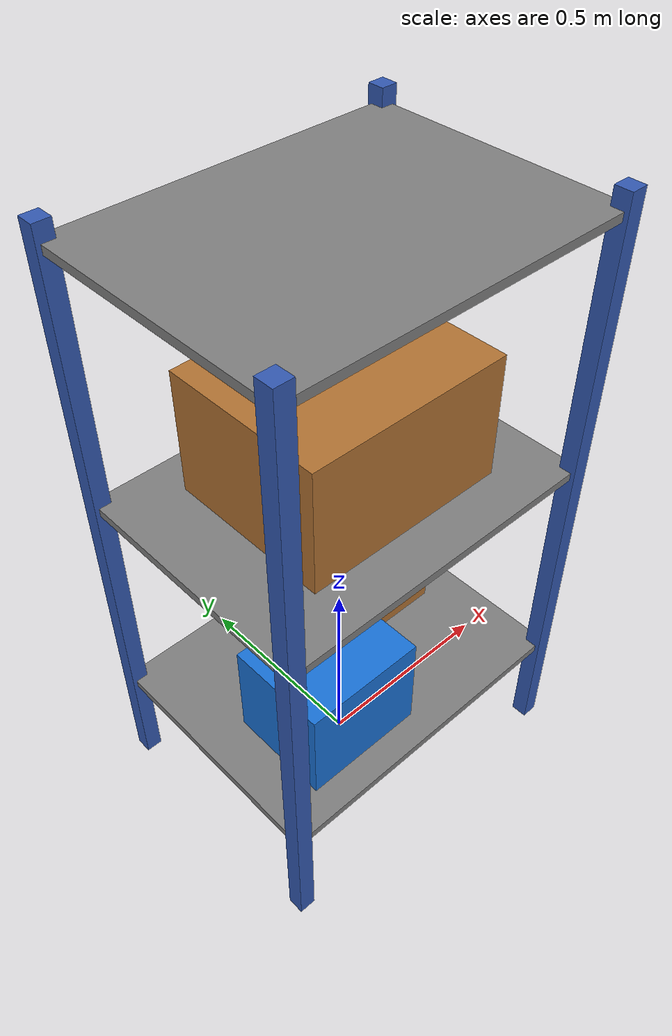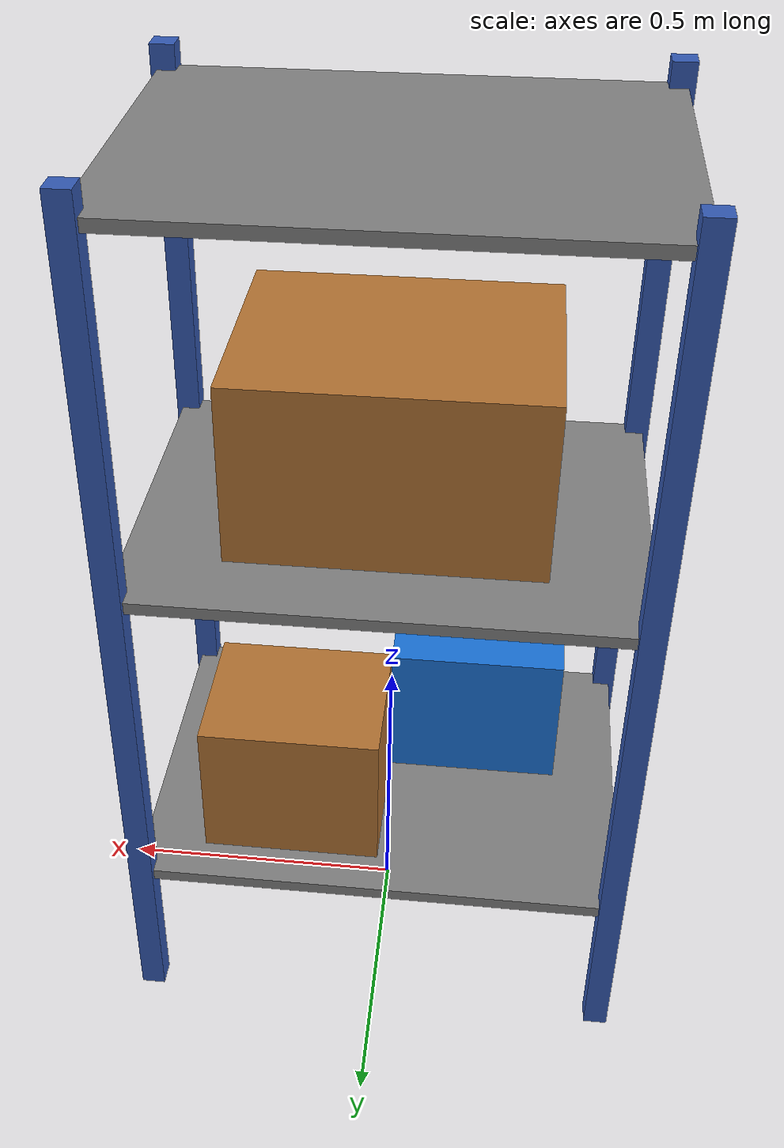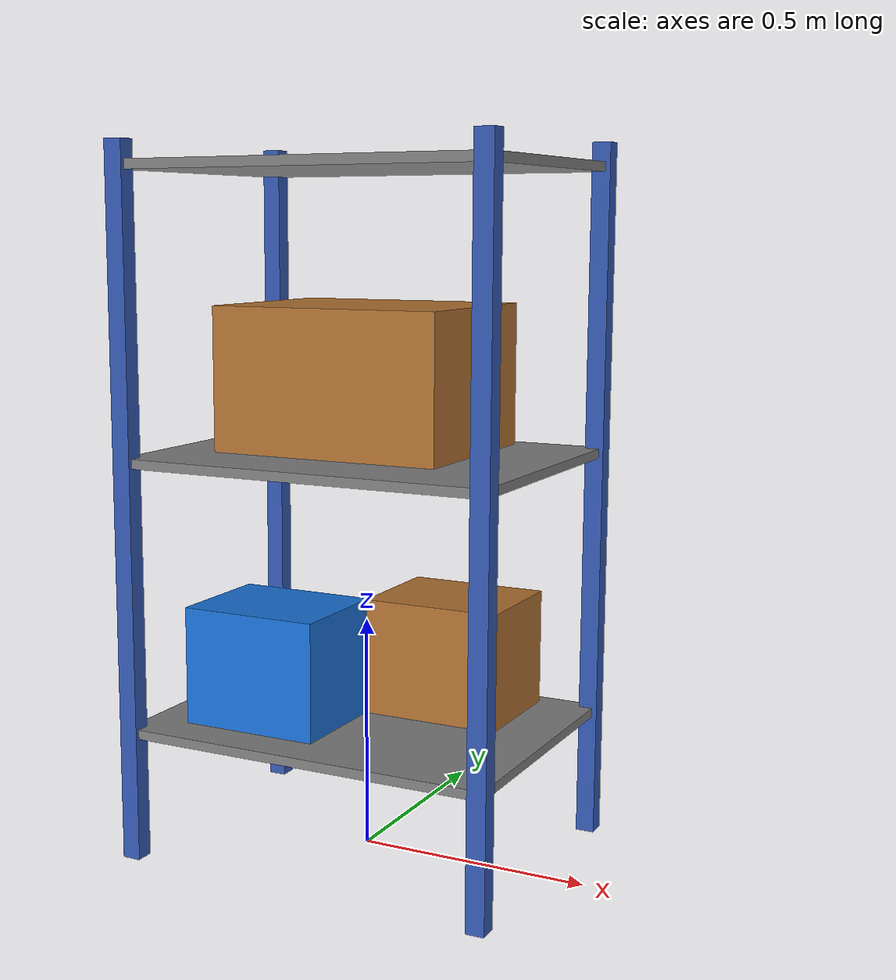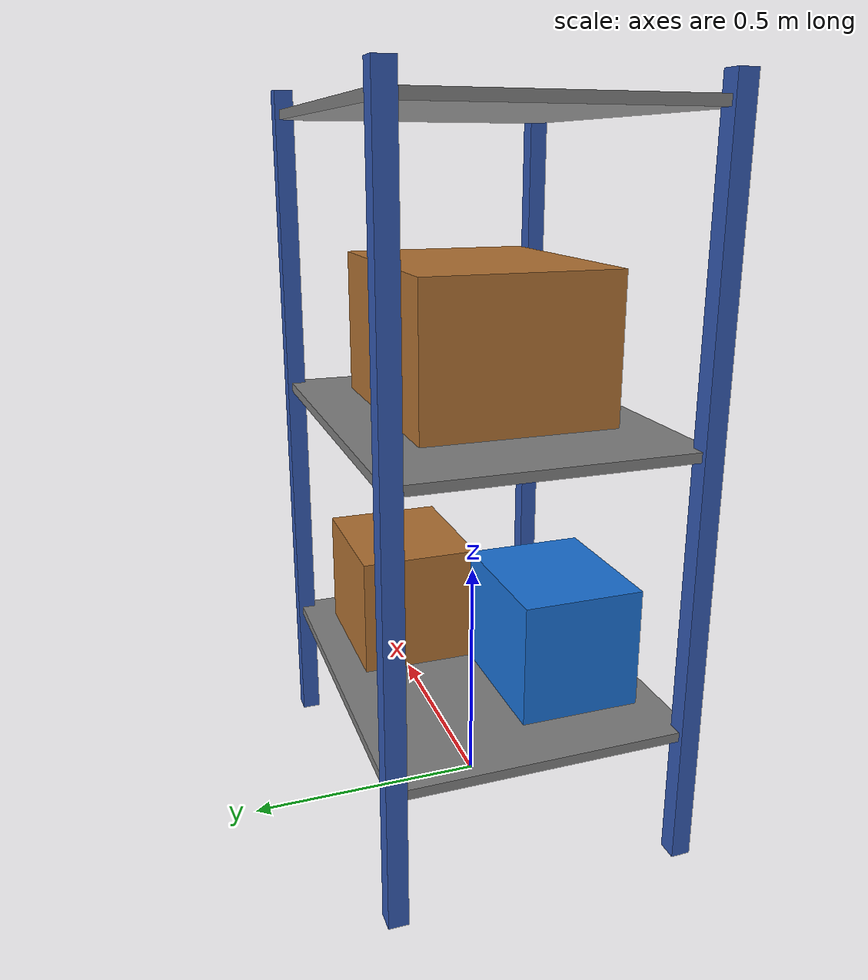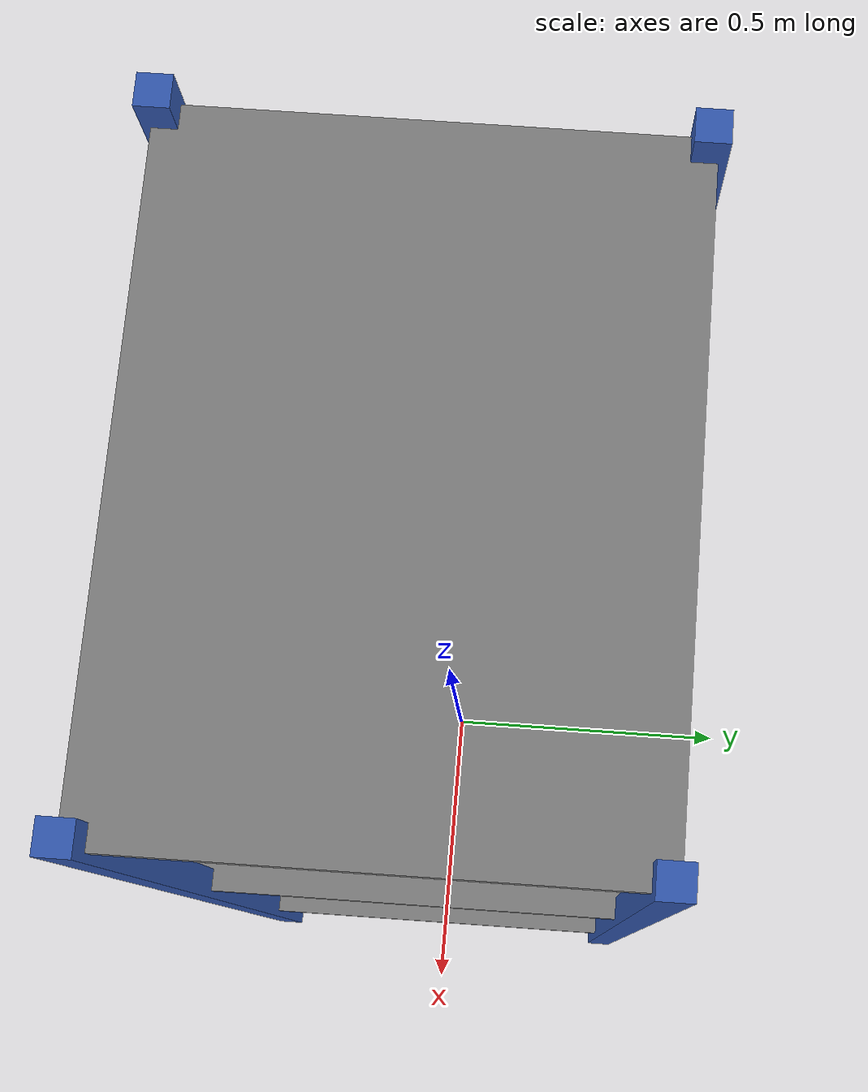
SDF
<?xml version="1.0" ?>
<sdf version="1.6">
  <model name="warehouse_shelf">
    <static>false</static>
    <link name="shelf_link">
      <inertial>
        <pose>0 0 0.7 0 0 0</pose>
        <mass>18.0</mass>
        <inertia>
          <ixx>4.2</ixx><ixy>0</ixy><ixz>0</ixz>
          <iyy>4.5</iyy><iyz>0</iyz>
          <izz>1.5</izz>
        </inertia>
      </inertial>

      <!-- 4 Corner Legs -->
      <!-- Front-Left Leg -->
      <visual name="leg_fl_vis">
        <pose>0.40 0.30 0.75 0 0 0</pose>
        <geometry><box><size>0.04 0.04 1.5</size></box></geometry>
        <material><ambient>0.2 0.3 0.6 1</ambient><diffuse>0.2 0.35 0.7 1</diffuse></material>
      </visual>
      <collision name="leg_fl_col">
        <pose>0.40 0.30 0.75 0 0 0</pose>
        <geometry><box><size>0.04 0.04 1.5</size></box></geometry>
      </collision>

      <!-- Front-Right Leg -->
      <visual name="leg_fr_vis">
        <pose>0.40 -0.30 0.75 0 0 0</pose>
        <geometry><box><size>0.04 0.04 1.5</size></box></geometry>
        <material><ambient>0.2 0.3 0.6 1</ambient><diffuse>0.2 0.35 0.7 1</diffuse></material>
      </visual>
      <collision name="leg_fr_col">
        <pose>0.40 -0.30 0.75 0 0 0</pose>
        <geometry><box><size>0.04 0.04 1.5</size></box></geometry>
      </collision>

      <!-- Rear-Left Leg -->
      <visual name="leg_rl_vis">
        <pose>-0.40 0.30 0.75 0 0 0</pose>
        <geometry><box><size>0.04 0.04 1.5</size></box></geometry>
        <material><ambient>0.2 0.3 0.6 1</ambient><diffuse>0.2 0.35 0.7 1</diffuse></material>
      </visual>
      <collision name="leg_rl_col">
        <pose>-0.40 0.30 0.75 0 0 0</pose>
        <geometry><box><size>0.04 0.04 1.5</size></box></geometry>
      </collision>

      <!-- Rear-Right Leg -->
      <visual name="leg_rr_vis">
        <pose>-0.40 -0.30 0.75 0 0 0</pose>
        <geometry><box><size>0.04 0.04 1.5</size></box></geometry>
        <material><ambient>0.2 0.3 0.6 1</ambient><diffuse>0.2 0.35 0.7 1</diffuse></material>
      </visual>
      <collision name="leg_rr_col">
        <pose>-0.40 -0.30 0.75 0 0 0</pose>
        <geometry><box><size>0.04 0.04 1.5</size></box></geometry>
      </collision>

      <!-- Lift Contact Deck (Underside engages with robot lift plate at z=0.27m) -->
      <visual name="lift_deck_vis">
        <pose>0 0 0.275 0 0 0</pose>
        <geometry><box><size>0.82 0.62 0.02</size></box></geometry>
        <material><ambient>0.4 0.4 0.4 1</ambient><diffuse>0.5 0.5 0.5 1</diffuse></material>
      </visual>
      <collision name="lift_deck_col">
        <pose>0 0 0.275 0 0 0</pose>
        <geometry><box><size>0.82 0.62 0.02</size></box></geometry>
        <surface>
          <friction>
            <ode><mu>1.5</mu><mu2>1.5</mu2></ode>
          </friction>
        </surface>
      </collision>

      <!-- Middle Shelf Tier -->
      <visual name="mid_shelf_vis">
        <pose>0 0 0.85 0 0 0</pose>
        <geometry><box><size>0.82 0.62 0.02</size></box></geometry>
        <material><ambient>0.4 0.4 0.4 1</ambient><diffuse>0.5 0.5 0.5 1</diffuse></material>
      </visual>
      <collision name="mid_shelf_col">
        <pose>0 0 0.85 0 0 0</pose>
        <geometry><box><size>0.82 0.62 0.02</size></box></geometry>
      </collision>

      <!-- Top Shelf Tier -->
      <visual name="top_shelf_vis">
        <pose>0 0 1.45 0 0 0</pose>
        <geometry><box><size>0.82 0.62 0.02</size></box></geometry>
        <material><ambient>0.4 0.4 0.4 1</ambient><diffuse>0.5 0.5 0.5 1</diffuse></material>
      </visual>
      <collision name="top_shelf_col">
        <pose>0 0 1.45 0 0 0</pose>
        <geometry><box><size>0.82 0.62 0.02</size></box></geometry>
      </collision>

      <!-- Storage Totes/Boxes on Shelves (Visual elements) -->
      <visual name="box1_vis">
        <pose>0.15 0.12 0.42 0 0 0</pose>
        <geometry><box><size>0.3 0.25 0.25</size></box></geometry>
        <material><ambient>0.8 0.5 0.2 1</ambient><diffuse>0.7 0.45 0.2 1</diffuse></material>
      </visual>
      <visual name="box2_vis">
        <pose>-0.15 -0.12 0.42 0 0 0</pose>
        <geometry><box><size>0.3 0.25 0.25</size></box></geometry>
        <material><ambient>0.1 0.4 0.8 1</ambient><diffuse>0.1 0.45 0.85 1</diffuse></material>
      </visual>
      <visual name="box3_vis">
        <pose>0 0 1.02 0 0 0</pose>
        <geometry><box><size>0.5 0.4 0.3</size></box></geometry>
        <material><ambient>0.8 0.5 0.2 1</ambient><diffuse>0.7 0.45 0.2 1</diffuse></material>
      </visual>
    </link>
  </model>
</sdf>
